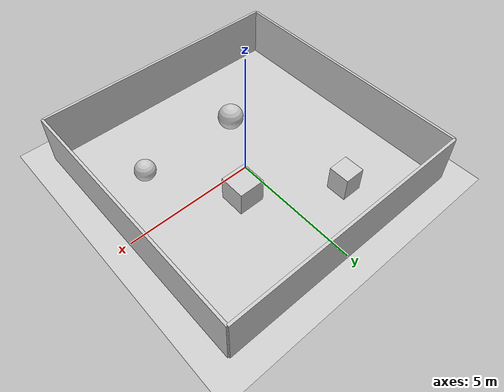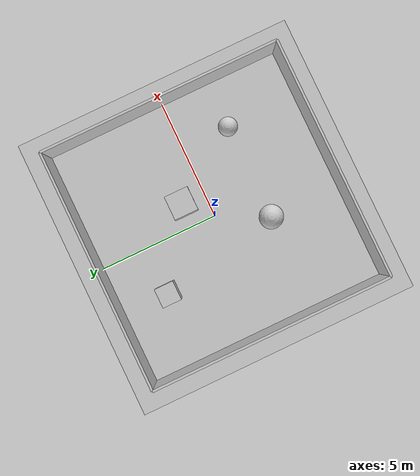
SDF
<?xml version="1.0" ?>
<sdf version="1.8">
    <world name="buddy_world">
        <physics name="1ms" type="ignored">
            <max_step_size>0.001</max_step_size>
            <real_time_factor>1.0</real_time_factor>
        </physics>

        <plugin filename="libignition-gazebo-physics-system.so" name="ignition::gazebo::systems::Physics"/>
        <plugin filename="libignition-gazebo-user-commands-system.so" name="ignition::gazebo::systems::UserCommands"/>
        <plugin filename="libignition-gazebo-scene-broadcaster-system.so" name="ignition::gazebo::systems::SceneBroadcaster"/>
        <plugin filename="libignition-gazebo-sensors-system.so" name="ignition::gazebo::systems::Sensors">
            <render_engine>ogre2</render_engine>
        </plugin>

        <light type="directional" name="sun">
            <cast_shadows>true</cast_shadows>
            <pose>0 0 10 0 0 0</pose>
            <diffuse>0.8 0.8 0.8 1</diffuse>
            <specular>0.2 0.2 0.2 1</specular>
            <direction>-0.5 0.1 -0.9</direction>
        </light>

        <model name="ground_plane">
            <static>true</static>
            <link name="link">
                <collision name="collision">
                    <geometry><plane><normal>0 0 1</normal><size>100 100</size></plane></geometry>
                </collision>
                <visual name="visual">
                    <geometry><plane><normal>0 0 1</normal><size>100 100</size></plane></geometry>
                    <material><ambient>0.8 0.8 0.8 1</ambient><diffuse>0.8 0.8 0.8 1</diffuse></material>
                </visual>
            </link>
        </model>

        <model name="wall_front"><static>true</static><pose>5 0 1 0 0 0</pose>
            <link name="link">
                <collision name="c"><geometry><box><size>0.1 10 2</size></box></geometry></collision>
                <visual name="v"><geometry><box><size>0.1 10 2</size></box></geometry><material><ambient>0.8 0.8 0.8 1</ambient><diffuse>0.8 0.8 0.8 1</diffuse></material></visual>
            </link>
        </model>
        <model name="wall_back"><static>true</static><pose>-5 0 1 0 0 0</pose>
            <link name="link">
                <collision name="c"><geometry><box><size>0.1 10 2</size></box></geometry></collision>
                <visual name="v"><geometry><box><size>0.1 10 2</size></box></geometry><material><ambient>0.8 0.8 0.8 1</ambient><diffuse>0.8 0.8 0.8 1</diffuse></material></visual>
            </link>
        </model>
        <model name="wall_left"><static>true</static><pose>0 5 1 0 0 0</pose>
            <link name="link">
                <collision name="c"><geometry><box><size>10 0.1 2</size></box></geometry></collision>
                <visual name="v"><geometry><box><size>10 0.1 2</size></box></geometry><material><ambient>0.8 0.8 0.8 1</ambient><diffuse>0.8 0.8 0.8 1</diffuse></material></visual>
            </link>
        </model>
        <model name="wall_right"><static>true</static><pose>0 -5 1 0 0 0</pose>
            <link name="link">
                <collision name="c"><geometry><box><size>10 0.1 2</size></box></geometry></collision>
                <visual name="v"><geometry><box><size>10 0.1 2</size></box></geometry><material><ambient>0.8 0.8 0.8 1</ambient><diffuse>0.8 0.8 0.8 1</diffuse></material></visual>
            </link>
        </model>

        <model name="box_1"><static>true</static><pose>1 1 0.5 0 0 0</pose>
            <link name="link">
                <collision name="c"><geometry><box><size>1 1 1</size></box></geometry></collision>
                <visual name="v"><geometry><box><size>1 1 1</size></box></geometry><material><ambient>0.8 0.8 0.8 1</ambient><diffuse>0.8 0.8 0.8 1</diffuse></material></visual>
            </link>
        </model>
        <model name="sphere_1"><static>true</static><pose>-1 -2 0.5 0 0 0</pose>
            <link name="link">
                <collision name="c"><geometry><sphere><radius>0.5</radius></sphere></geometry></collision>
                <visual name="v"><geometry><sphere><radius>0.5</radius></sphere></geometry><material><ambient>0.8 0.8 0.8 1</ambient><diffuse>0.8 0.8 0.8 1</diffuse></material></visual>
            </link>
        </model>
        <model name="box_2"><static>true</static><pose>-2 3 0.5 0 0 0</pose>
            <link name="link">
                <collision name="c"><geometry><box><size>0.8 0.8 1</size></box></geometry></collision>
                <visual name="v"><geometry><box><size>0.8 0.8 1</size></box></geometry><material><ambient>0.8 0.8 0.8 1</ambient><diffuse>0.8 0.8 0.8 1</diffuse></material></visual>
            </link>
        </model>
        <model name="sphere_2"><static>true</static><pose>3 -2 0.4 0 0 0</pose>
            <link name="link">
                <collision name="c"><geometry><sphere><radius>0.4</radius></sphere></geometry></collision>
                <visual name="v"><geometry><sphere><radius>0.4</radius></sphere></geometry><material><ambient>0.8 0.8 0.8 1</ambient><diffuse>0.8 0.8 0.8 1</diffuse></material></visual>
            </link>
        </model>
    </world>
</sdf>
